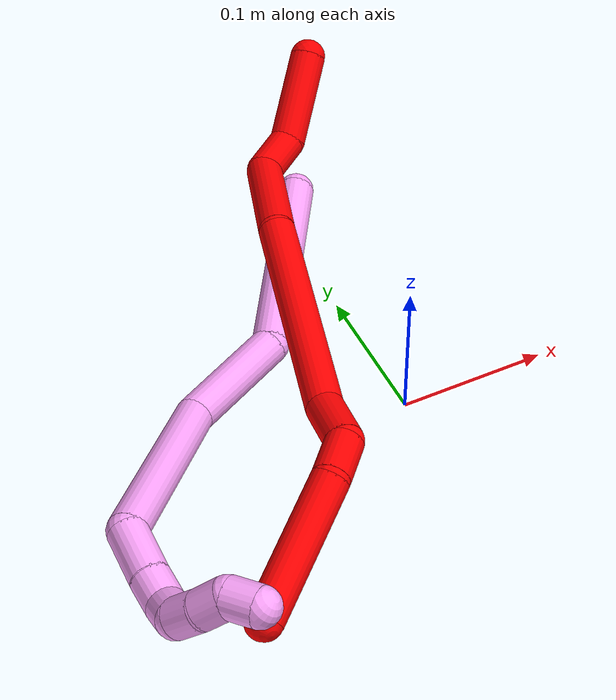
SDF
<sdf version="1.7">
 <world name="default">
  <model name="2">
   <static>0</static>
   <link name="2">
    <collision name="collision-cylinder-e_1_1_4">
     <pose>-0.01244 -0.022572 -0.020342 2.30427 -0.388569 -0.832701</pose>
     <geometry><cylinder><radius>0.0125</radius><length>0.065668</length></cylinder></geometry>
     <surface>
      <friction><ode><mu>1.16</mu><mu2>1.16</mu2><slip1>0</slip1><slip2>0</slip2></ode></friction>
      <contact><ode><kp>1e+06</kp><kd>1</kd><max_vel>0</max_vel><min_depth>0.001</min_depth></ode></contact>
     </surface>
    </collision>
    <visual name="visual-cylinder-e_1_1_4">
     <pose>-0.01244 -0.022572 -0.020342 2.30427 -0.388569 -0.832701</pose>
     <geometry><cylinder><radius>0.0125</radius><length>0.065668</length></cylinder></geometry>
     <material><ambient>1 0 0 1</ambient></material>
    </visual>
    <collision name="collision-cylinder-e_2_4_5">
     <pose>-0.023604 -0.058292 -0.049364 2.15429 0.080739 0.149849</pose>
     <geometry><cylinder><radius>0.0125</radius><length>0.031611</length></cylinder></geometry>
     <surface>
      <friction><ode><mu>1.16</mu><mu2>1.16</mu2><slip1>0</slip1><slip2>0</slip2></ode></friction>
      <contact><ode><kp>1e+06</kp><kd>1</kd><max_vel>0</max_vel><min_depth>0.001</min_depth></ode></contact>
     </surface>
    </collision>
    <visual name="visual-cylinder-e_2_4_5">
     <pose>-0.023604 -0.058292 -0.049364 2.15429 0.080739 0.149849</pose>
     <geometry><cylinder><radius>0.0125</radius><length>0.031611</length></cylinder></geometry>
     <material><ambient>1 0 0 1</ambient></material>
    </visual>
    <collision name="collision-cylinder-e_3_5_6">
     <pose>-0.013309 -0.080801 -0.096182 2.9009 0.22578 1.5063</pose>
     <geometry><cylinder><radius>0.0125</radius><length>0.080588</length></cylinder></geometry>
     <surface>
      <friction><ode><mu>1.16</mu><mu2>1.16</mu2><slip1>0</slip1><slip2>0</slip2></ode></friction>
      <contact><ode><kp>1e+06</kp><kd>1</kd><max_vel>0</max_vel><min_depth>0.001</min_depth></ode></contact>
     </surface>
    </collision>
    <visual name="visual-cylinder-e_3_5_6">
     <pose>-0.013309 -0.080801 -0.096182 2.9009 0.22578 1.5063</pose>
     <geometry><cylinder><radius>0.0125</radius><length>0.080588</length></cylinder></geometry>
     <material><ambient>1 0 0 1</ambient></material>
    </visual>
    <collision name="collision-cylinder-e_4_6_7">
     <pose>-0.007581 -0.109044 -0.209642 2.89597 -0.042378 -0.340059</pose>
     <geometry><cylinder><radius>0.0125</radius><length>0.155442</length></cylinder></geometry>
     <surface>
      <friction><ode><mu>1.16</mu><mu2>1.16</mu2><slip1>0</slip1><slip2>0</slip2></ode></friction>
      <contact><ode><kp>1e+06</kp><kd>1</kd><max_vel>0</max_vel><min_depth>0.001</min_depth></ode></contact>
     </surface>
    </collision>
    <visual name="visual-cylinder-e_4_6_7">
     <pose>-0.007581 -0.109044 -0.209642 2.89597 -0.042378 -0.340059</pose>
     <geometry><cylinder><radius>0.0125</radius><length>0.155442</length></cylinder></geometry>
     <material><ambient>1 0 0 1</ambient></material>
    </visual>
    <collision name="collision-cylinder-e_5_7_8">
     <pose>-0.005957 -0.12882 -0.304699 3.09632 0.24392 2.7763</pose>
     <geometry><cylinder><radius>0.0125</radius><length>0.040719</length></cylinder></geometry>
     <surface>
      <friction><ode><mu>1.16</mu><mu2>1.16</mu2><slip1>0</slip1><slip2>0</slip2></ode></friction>
      <contact><ode><kp>1e+06</kp><kd>1</kd><max_vel>0</max_vel><min_depth>0.001</min_depth></ode></contact>
     </surface>
    </collision>
    <visual name="visual-cylinder-e_5_7_8">
     <pose>-0.005957 -0.12882 -0.304699 3.09632 0.24392 2.7763</pose>
     <geometry><cylinder><radius>0.0125</radius><length>0.040719</length></cylinder></geometry>
     <material><ambient>1 0 0 1</ambient></material>
    </visual>
    <collision name="collision-cylinder-e_6_8_9">
     <pose>0.001335 -0.139382 -0.335799 2.43664 0.157875 0.423639</pose>
     <geometry><cylinder><radius>0.0125</radius><length>0.030216</length></cylinder></geometry>
     <surface>
      <friction><ode><mu>1.16</mu><mu2>1.16</mu2><slip1>0</slip1><slip2>0</slip2></ode></friction>
      <contact><ode><kp>1e+06</kp><kd>1</kd><max_vel>0</max_vel><min_depth>0.001</min_depth></ode></contact>
     </surface>
    </collision>
    <visual name="visual-cylinder-e_6_8_9">
     <pose>0.001335 -0.139382 -0.335799 2.43664 0.157875 0.423639</pose>
     <geometry><cylinder><radius>0.0125</radius><length>0.030216</length></cylinder></geometry>
     <material><ambient>1 0 0 1</ambient></material>
    </visual>
    <collision name="collision-cylinder-e_7_9_2">
     <pose>-0.00141 -0.187234 -0.375591 2.21076 -0.107151 -0.212755</pose>
     <geometry><cylinder><radius>0.0125</radius><length>0.095757</length></cylinder></geometry>
     <surface>
      <friction><ode><mu>1.16</mu><mu2>1.16</mu2><slip1>0</slip1><slip2>0</slip2></ode></friction>
      <contact><ode><kp>1e+06</kp><kd>1</kd><max_vel>0</max_vel><min_depth>0.001</min_depth></ode></contact>
     </surface>
    </collision>
    <visual name="visual-cylinder-e_7_9_2">
     <pose>-0.00141 -0.187234 -0.375591 2.21076 -0.107151 -0.212755</pose>
     <geometry><cylinder><radius>0.0125</radius><length>0.095757</length></cylinder></geometry>
     <material><ambient>1 0 0 1</ambient></material>
    </visual>
    <collision name="collision-sphere-2">
     <pose>-0.00653 -0.225418 -0.404018 0 -0 0</pose>
     <geometry><sphere><radius>0.0125</radius></sphere></geometry>
     <surface>
      <friction><ode><mu>1.16</mu><mu2>1.16</mu2><slip1>0</slip1><slip2>0</slip2></ode></friction>
      <contact><ode><kp>1e+06</kp><kd>1</kd><max_vel>0</max_vel><min_depth>0.001</min_depth></ode></contact>
     </surface>
    </collision>
    <visual name="visual-sphere-2">
     <pose>-0.00653 -0.225418 -0.404018 0 -0 0</pose>
     <geometry><sphere><radius>0.0125</radius></sphere></geometry>
     <material><ambient>1 0 0 1</ambient></material>
    </visual>
    <collision name="collision-sphere-9">
     <pose>0.00371 -0.14905 -0.347163 0 -0 0</pose>
     <geometry><sphere><radius>0.0125</radius></sphere></geometry>
     <surface>
      <friction><ode><mu>1.16</mu><mu2>1.16</mu2><slip1>0</slip1><slip2>0</slip2></ode></friction>
      <contact><ode><kp>1e+06</kp><kd>1</kd><max_vel>0</max_vel><min_depth>0.001</min_depth></ode></contact>
     </surface>
    </collision>
    <visual name="visual-sphere-9">
     <pose>0.00371 -0.14905 -0.347163 0 -0 0</pose>
     <geometry><sphere><radius>0.0125</radius></sphere></geometry>
     <material><ambient>1 0 0 1</ambient></material>
    </visual>
    <collision name="collision-sphere-4">
     <pose>-0.024879 -0.045145 -0.040684 0 -0 0</pose>
     <geometry><sphere><radius>0.0125</radius></sphere></geometry>
     <surface>
      <friction><ode><mu>1.16</mu><mu2>1.16</mu2><slip1>0</slip1><slip2>0</slip2></ode></friction>
      <contact><ode><kp>1e+06</kp><kd>1</kd><max_vel>0</max_vel><min_depth>0.001</min_depth></ode></contact>
     </surface>
    </collision>
    <visual name="visual-sphere-4">
     <pose>-0.024879 -0.045145 -0.040684 0 -0 0</pose>
     <geometry><sphere><radius>0.0125</radius></sphere></geometry>
     <material><ambient>1 0 0 1</ambient></material>
    </visual>
    <collision name="collision-sphere-1">
     <geometry><sphere><radius>0.0125</radius></sphere></geometry>
     <surface>
      <friction><ode><mu>1.16</mu><mu2>1.16</mu2><slip1>0</slip1><slip2>0</slip2></ode></friction>
      <contact><ode><kp>1e+06</kp><kd>1</kd><max_vel>0</max_vel><min_depth>0.001</min_depth></ode></contact>
     </surface>
    </collision>
    <visual name="visual-sphere-1">
     <geometry><sphere><radius>0.0125</radius></sphere></geometry>
     <material><ambient>1 0 0 1</ambient></material>
    </visual>
    <collision name="collision-sphere-8">
     <pose>-0.00104 -0.129714 -0.324436 0 -0 0</pose>
     <geometry><sphere><radius>0.0125</radius></sphere></geometry>
     <surface>
      <friction><ode><mu>1.16</mu><mu2>1.16</mu2><slip1>0</slip1><slip2>0</slip2></ode></friction>
      <contact><ode><kp>1e+06</kp><kd>1</kd><max_vel>0</max_vel><min_depth>0.001</min_depth></ode></contact>
     </surface>
    </collision>
    <visual name="visual-sphere-8">
     <pose>-0.00104 -0.129714 -0.324436 0 -0 0</pose>
     <geometry><sphere><radius>0.0125</radius></sphere></geometry>
     <material><ambient>1 0 0 1</ambient></material>
    </visual>
    <collision name="collision-sphere-5">
     <pose>-0.02233 -0.07144 -0.058043 0 -0 0</pose>
     <geometry><sphere><radius>0.0125</radius></sphere></geometry>
     <surface>
      <friction><ode><mu>1.16</mu><mu2>1.16</mu2><slip1>0</slip1><slip2>0</slip2></ode></friction>
      <contact><ode><kp>1e+06</kp><kd>1</kd><max_vel>0</max_vel><min_depth>0.001</min_depth></ode></contact>
     </surface>
    </collision>
    <visual name="visual-sphere-5">
     <pose>-0.02233 -0.07144 -0.058043 0 -0 0</pose>
     <geometry><sphere><radius>0.0125</radius></sphere></geometry>
     <material><ambient>1 0 0 1</ambient></material>
    </visual>
    <collision name="collision-sphere-6">
     <pose>-0.004289 -0.090162 -0.134322 0 -0 0</pose>
     <geometry><sphere><radius>0.0125</radius></sphere></geometry>
     <surface>
      <friction><ode><mu>1.16</mu><mu2>1.16</mu2><slip1>0</slip1><slip2>0</slip2></ode></friction>
      <contact><ode><kp>1e+06</kp><kd>1</kd><max_vel>0</max_vel><min_depth>0.001</min_depth></ode></contact>
     </surface>
    </collision>
    <visual name="visual-sphere-6">
     <pose>-0.004289 -0.090162 -0.134322 0 -0 0</pose>
     <geometry><sphere><radius>0.0125</radius></sphere></geometry>
     <material><ambient>1 0 0 1</ambient></material>
    </visual>
    <collision name="collision-sphere-7">
     <pose>-0.010874 -0.127926 -0.284963 0 -0 0</pose>
     <geometry><sphere><radius>0.0125</radius></sphere></geometry>
     <surface>
      <friction><ode><mu>1.16</mu><mu2>1.16</mu2><slip1>0</slip1><slip2>0</slip2></ode></friction>
      <contact><ode><kp>1e+06</kp><kd>1</kd><max_vel>0</max_vel><min_depth>0.001</min_depth></ode></contact>
     </surface>
    </collision>
    <visual name="visual-sphere-7">
     <pose>-0.010874 -0.127926 -0.284963 0 -0 0</pose>
     <geometry><sphere><radius>0.0125</radius></sphere></geometry>
     <material><ambient>1 0 0 1</ambient></material>
    </visual>
    <inertial>
     <pose>-0.008303 -0.108345 -0.203507 0 -0 0</pose>
     <mass>0.5</mass>
     <inertia>
      <ixx>0.000304</ixx>
      <ixy>0</ixy>
      <ixz>0</ixz>
      <iyy>-0.000447</iyy>
      <iyz>0</iyz>
      <izz>0.00016</izz>
     </inertia>
    </inertial>
   </link>
   <pose>0.066034 0.281114 0.063148 1.75191 -1.26348 2.94481</pose>
  </model>
  <model name="4">
   <static>0</static>
   <link name="4">
    <collision name="collision-cylinder-e_1_1_4">
     <pose>-0.048879 -0.060165 -0.005111 1.65554 -0.680503 -0.735655</pose>
     <geometry><cylinder><radius>0.0125</radius><length>0.155373</length></cylinder></geometry>
     <surface>
      <friction><ode><mu>1.16</mu><mu2>1.16</mu2><slip1>0</slip1><slip2>0</slip2></ode></friction>
      <contact><ode><kp>1e+06</kp><kd>1</kd><max_vel>0</max_vel><min_depth>0.001</min_depth></ode></contact>
     </surface>
    </collision>
    <visual name="visual-cylinder-e_1_1_4">
     <pose>-0.048879 -0.060165 -0.005111 1.65554 -0.680503 -0.735655</pose>
     <geometry><cylinder><radius>0.0125</radius><length>0.155373</length></cylinder></geometry>
     <material><ambient>1 0.65098 0.996078 1</ambient></material>
    </visual>
    <collision name="collision-cylinder-e_2_4_5">
     <pose>-0.127673 -0.134812 -0.027536 2.44508 -0.924397 -1.88207</pose>
     <geometry><cylinder><radius>0.0125</radius><length>0.074952</length></cylinder></geometry>
     <surface>
      <friction><ode><mu>1.16</mu><mu2>1.16</mu2><slip1>0</slip1><slip2>0</slip2></ode></friction>
      <contact><ode><kp>1e+06</kp><kd>1</kd><max_vel>0</max_vel><min_depth>0.001</min_depth></ode></contact>
     </surface>
    </collision>
    <visual name="visual-cylinder-e_2_4_5">
     <pose>-0.127673 -0.134812 -0.027536 2.44508 -0.924397 -1.88207</pose>
     <geometry><cylinder><radius>0.0125</radius><length>0.074952</length></cylinder></geometry>
     <material><ambient>1 0.65098 0.996078 1</ambient></material>
    </visual>
    <collision name="collision-cylinder-e_3_5_6">
     <pose>-0.212243 -0.186493 -0.041721 1.48684 -0.97155 -0.90381</pose>
     <geometry><cylinder><radius>0.0125</radius><length>0.132373</length></cylinder></geometry>
     <surface>
      <friction><ode><mu>1.16</mu><mu2>1.16</mu2><slip1>0</slip1><slip2>0</slip2></ode></friction>
      <contact><ode><kp>1e+06</kp><kd>1</kd><max_vel>0</max_vel><min_depth>0.001</min_depth></ode></contact>
     </surface>
    </collision>
    <visual name="visual-cylinder-e_3_5_6">
     <pose>-0.212243 -0.186493 -0.041721 1.48684 -0.97155 -0.90381</pose>
     <geometry><cylinder><radius>0.0125</radius><length>0.132373</length></cylinder></geometry>
     <material><ambient>1 0.65098 0.996078 1</ambient></material>
    </visual>
    <collision name="collision-cylinder-e_4_6_7">
     <pose>-0.270719 -0.240574 -0.03458 1.33757 -0.216778 -0.171567</pose>
     <geometry><cylinder><radius>0.0125</radius><length>0.035536</length></cylinder></geometry>
     <surface>
      <friction><ode><mu>1.16</mu><mu2>1.16</mu2><slip1>0</slip1><slip2>0</slip2></ode></friction>
      <contact><ode><kp>1e+06</kp><kd>1</kd><max_vel>0</max_vel><min_depth>0.001</min_depth></ode></contact>
     </surface>
    </collision>
    <visual name="visual-cylinder-e_4_6_7">
     <pose>-0.270719 -0.240574 -0.03458 1.33757 -0.216778 -0.171567</pose>
     <geometry><cylinder><radius>0.0125</radius><length>0.035536</length></cylinder></geometry>
     <material><ambient>1 0.65098 0.996078 1</ambient></material>
    </visual>
    <collision name="collision-cylinder-e_5_7_8">
     <pose>-0.27598 -0.267486 -0.028093 1.3288 -0.138508 -0.108543</pose>
     <geometry><cylinder><radius>0.0125</radius><length>0.020861</length></cylinder></geometry>
     <surface>
      <friction><ode><mu>1.16</mu><mu2>1.16</mu2><slip1>0</slip1><slip2>0</slip2></ode></friction>
      <contact><ode><kp>1e+06</kp><kd>1</kd><max_vel>0</max_vel><min_depth>0.001</min_depth></ode></contact>
     </surface>
    </collision>
    <visual name="visual-cylinder-e_5_7_8">
     <pose>-0.27598 -0.267486 -0.028093 1.3288 -0.138508 -0.108543</pose>
     <geometry><cylinder><radius>0.0125</radius><length>0.020861</length></cylinder></geometry>
     <material><ambient>1 0.65098 0.996078 1</ambient></material>
    </visual>
    <collision name="collision-cylinder-e_6_8_9">
     <pose>-0.282626 -0.283927 -0.019489 0.807935 -0.530691 -0.2313</pose>
     <geometry><cylinder><radius>0.0125</radius><length>0.02057</length></cylinder></geometry>
     <surface>
      <friction><ode><mu>1.16</mu><mu2>1.16</mu2><slip1>0</slip1><slip2>0</slip2></ode></friction>
      <contact><ode><kp>1e+06</kp><kd>1</kd><max_vel>0</max_vel><min_depth>0.001</min_depth></ode></contact>
     </surface>
    </collision>
    <visual name="visual-cylinder-e_6_8_9">
     <pose>-0.282626 -0.283927 -0.019489 0.807935 -0.530691 -0.2313</pose>
     <geometry><cylinder><radius>0.0125</radius><length>0.02057</length></cylinder></geometry>
     <material><ambient>1 0.65098 0.996078 1</ambient></material>
    </visual>
    <collision name="collision-cylinder-e_7_9_10">
     <pose>-0.288151 -0.292734 -0.003563 0.239758 -0.031671 -0.003815</pose>
     <geometry><cylinder><radius>0.0125</radius><length>0.020179</length></cylinder></geometry>
     <surface>
      <friction><ode><mu>1.16</mu><mu2>1.16</mu2><slip1>0</slip1><slip2>0</slip2></ode></friction>
      <contact><ode><kp>1e+06</kp><kd>1</kd><max_vel>0</max_vel><min_depth>0.001</min_depth></ode></contact>
     </surface>
    </collision>
    <visual name="visual-cylinder-e_7_9_10">
     <pose>-0.288151 -0.292734 -0.003563 0.239758 -0.031671 -0.003815</pose>
     <geometry><cylinder><radius>0.0125</radius><length>0.020179</length></cylinder></geometry>
     <material><ambient>1 0.65098 0.996078 1</ambient></material>
    </visual>
    <collision name="collision-cylinder-e_8_10_11">
     <pose>-0.287476 -0.296433 0.016108 0.131386 0.099515 0.006552</pose>
     <geometry><cylinder><radius>0.0125</radius><length>0.02002</length></cylinder></geometry>
     <surface>
      <friction><ode><mu>1.16</mu><mu2>1.16</mu2><slip1>0</slip1><slip2>0</slip2></ode></friction>
      <contact><ode><kp>1e+06</kp><kd>1</kd><max_vel>0</max_vel><min_depth>0.001</min_depth></ode></contact>
     </surface>
    </collision>
    <visual name="visual-cylinder-e_8_10_11">
     <pose>-0.287476 -0.296433 0.016108 0.131386 0.099515 0.006552</pose>
     <geometry><cylinder><radius>0.0125</radius><length>0.02002</length></cylinder></geometry>
     <material><ambient>1 0.65098 0.996078 1</ambient></material>
    </visual>
    <collision name="collision-cylinder-e_9_11_2">
     <pose>-0.284154 -0.304719 0.032855 0.793233 0.233242 0.098051</pose>
     <geometry><cylinder><radius>0.0125</radius><length>0.020137</length></cylinder></geometry>
     <surface>
      <friction><ode><mu>1.16</mu><mu2>1.16</mu2><slip1>0</slip1><slip2>0</slip2></ode></friction>
      <contact><ode><kp>1e+06</kp><kd>1</kd><max_vel>0</max_vel><min_depth>0.001</min_depth></ode></contact>
     </surface>
    </collision>
    <visual name="visual-cylinder-e_9_11_2">
     <pose>-0.284154 -0.304719 0.032855 0.793233 0.233242 0.098051</pose>
     <geometry><cylinder><radius>0.0125</radius><length>0.020137</length></cylinder></geometry>
     <material><ambient>1 0.65098 0.996078 1</ambient></material>
    </visual>
    <collision name="collision-sphere-2">
     <pose>-0.281827 -0.3117 0.039727 0 -0 0</pose>
     <geometry><sphere><radius>0.0125</radius></sphere></geometry>
     <surface>
      <friction><ode><mu>1.16</mu><mu2>1.16</mu2><slip1>0</slip1><slip2>0</slip2></ode></friction>
      <contact><ode><kp>1e+06</kp><kd>1</kd><max_vel>0</max_vel><min_depth>0.001</min_depth></ode></contact>
     </surface>
    </collision>
    <visual name="visual-sphere-2">
     <pose>-0.281827 -0.3117 0.039727 0 -0 0</pose>
     <geometry><sphere><radius>0.0125</radius></sphere></geometry>
     <material><ambient>1 0.65098 0.996078 1</ambient></material>
    </visual>
    <collision name="collision-sphere-11">
     <pose>-0.286481 -0.297738 0.025982 0 -0 0</pose>
     <geometry><sphere><radius>0.0125</radius></sphere></geometry>
     <surface>
      <friction><ode><mu>1.16</mu><mu2>1.16</mu2><slip1>0</slip1><slip2>0</slip2></ode></friction>
      <contact><ode><kp>1e+06</kp><kd>1</kd><max_vel>0</max_vel><min_depth>0.001</min_depth></ode></contact>
     </surface>
    </collision>
    <visual name="visual-sphere-11">
     <pose>-0.286481 -0.297738 0.025982 0 -0 0</pose>
     <geometry><sphere><radius>0.0125</radius></sphere></geometry>
     <material><ambient>1 0.65098 0.996078 1</ambient></material>
    </visual>
    <collision name="collision-sphere-10">
     <pose>-0.28847 -0.295128 0.006233 0 -0 0</pose>
     <geometry><sphere><radius>0.0125</radius></sphere></geometry>
     <surface>
      <friction><ode><mu>1.16</mu><mu2>1.16</mu2><slip1>0</slip1><slip2>0</slip2></ode></friction>
      <contact><ode><kp>1e+06</kp><kd>1</kd><max_vel>0</max_vel><min_depth>0.001</min_depth></ode></contact>
     </surface>
    </collision>
    <visual name="visual-sphere-10">
     <pose>-0.28847 -0.295128 0.006233 0 -0 0</pose>
     <geometry><sphere><radius>0.0125</radius></sphere></geometry>
     <material><ambient>1 0.65098 0.996078 1</ambient></material>
    </visual>
    <collision name="collision-sphere-9">
     <pose>-0.287831 -0.290339 -0.013359 0 -0 0</pose>
     <geometry><sphere><radius>0.0125</radius></sphere></geometry>
     <surface>
      <friction><ode><mu>1.16</mu><mu2>1.16</mu2><slip1>0</slip1><slip2>0</slip2></ode></friction>
      <contact><ode><kp>1e+06</kp><kd>1</kd><max_vel>0</max_vel><min_depth>0.001</min_depth></ode></contact>
     </surface>
    </collision>
    <visual name="visual-sphere-9">
     <pose>-0.287831 -0.290339 -0.013359 0 -0 0</pose>
     <geometry><sphere><radius>0.0125</radius></sphere></geometry>
     <material><ambient>1 0.65098 0.996078 1</ambient></material>
    </visual>
    <collision name="collision-sphere-4">
     <pose>-0.097758 -0.120331 -0.010221 0 -0 0</pose>
     <geometry><sphere><radius>0.0125</radius></sphere></geometry>
     <surface>
      <friction><ode><mu>1.16</mu><mu2>1.16</mu2><slip1>0</slip1><slip2>0</slip2></ode></friction>
      <contact><ode><kp>1e+06</kp><kd>1</kd><max_vel>0</max_vel><min_depth>0.001</min_depth></ode></contact>
     </surface>
    </collision>
    <visual name="visual-sphere-4">
     <pose>-0.097758 -0.120331 -0.010221 0 -0 0</pose>
     <geometry><sphere><radius>0.0125</radius></sphere></geometry>
     <material><ambient>1 0.65098 0.996078 1</ambient></material>
    </visual>
    <collision name="collision-sphere-1">
     <geometry><sphere><radius>0.0125</radius></sphere></geometry>
     <surface>
      <friction><ode><mu>1.16</mu><mu2>1.16</mu2><slip1>0</slip1><slip2>0</slip2></ode></friction>
      <contact><ode><kp>1e+06</kp><kd>1</kd><max_vel>0</max_vel><min_depth>0.001</min_depth></ode></contact>
     </surface>
    </collision>
    <visual name="visual-sphere-1">
     <geometry><sphere><radius>0.0125</radius></sphere></geometry>
     <material><ambient>1 0.65098 0.996078 1</ambient></material>
    </visual>
    <collision name="collision-sphere-8">
     <pose>-0.27742 -0.277515 -0.025618 0 -0 0</pose>
     <geometry><sphere><radius>0.0125</radius></sphere></geometry>
     <surface>
      <friction><ode><mu>1.16</mu><mu2>1.16</mu2><slip1>0</slip1><slip2>0</slip2></ode></friction>
      <contact><ode><kp>1e+06</kp><kd>1</kd><max_vel>0</max_vel><min_depth>0.001</min_depth></ode></contact>
     </surface>
    </collision>
    <visual name="visual-sphere-8">
     <pose>-0.27742 -0.277515 -0.025618 0 -0 0</pose>
     <geometry><sphere><radius>0.0125</radius></sphere></geometry>
     <material><ambient>1 0.65098 0.996078 1</ambient></material>
    </visual>
    <collision name="collision-sphere-5">
     <pose>-0.157589 -0.149294 -0.044851 0 -0 0</pose>
     <geometry><sphere><radius>0.0125</radius></sphere></geometry>
     <surface>
      <friction><ode><mu>1.16</mu><mu2>1.16</mu2><slip1>0</slip1><slip2>0</slip2></ode></friction>
      <contact><ode><kp>1e+06</kp><kd>1</kd><max_vel>0</max_vel><min_depth>0.001</min_depth></ode></contact>
     </surface>
    </collision>
    <visual name="visual-sphere-5">
     <pose>-0.157589 -0.149294 -0.044851 0 -0 0</pose>
     <geometry><sphere><radius>0.0125</radius></sphere></geometry>
     <material><ambient>1 0.65098 0.996078 1</ambient></material>
    </visual>
    <collision name="collision-sphere-6">
     <pose>-0.266897 -0.223692 -0.03859 0 -0 0</pose>
     <geometry><sphere><radius>0.0125</radius></sphere></geometry>
     <surface>
      <friction><ode><mu>1.16</mu><mu2>1.16</mu2><slip1>0</slip1><slip2>0</slip2></ode></friction>
      <contact><ode><kp>1e+06</kp><kd>1</kd><max_vel>0</max_vel><min_depth>0.001</min_depth></ode></contact>
     </surface>
    </collision>
    <visual name="visual-sphere-6">
     <pose>-0.266897 -0.223692 -0.03859 0 -0 0</pose>
     <geometry><sphere><radius>0.0125</radius></sphere></geometry>
     <material><ambient>1 0.65098 0.996078 1</ambient></material>
    </visual>
    <collision name="collision-sphere-7">
     <pose>-0.27454 -0.257456 -0.030569 0 -0 0</pose>
     <geometry><sphere><radius>0.0125</radius></sphere></geometry>
     <surface>
      <friction><ode><mu>1.16</mu><mu2>1.16</mu2><slip1>0</slip1><slip2>0</slip2></ode></friction>
      <contact><ode><kp>1e+06</kp><kd>1</kd><max_vel>0</max_vel><min_depth>0.001</min_depth></ode></contact>
     </surface>
    </collision>
    <visual name="visual-sphere-7">
     <pose>-0.27454 -0.257456 -0.030569 0 -0 0</pose>
     <geometry><sphere><radius>0.0125</radius></sphere></geometry>
     <material><ambient>1 0.65098 0.996078 1</ambient></material>
    </visual>
    <inertial>
     <pose>-0.167484 -0.164172 -0.019368 0 -0 0</pose>
     <mass>0.5</mass>
     <inertia>
      <ixx>-4.1e-05</ixx>
      <ixy>0</ixy>
      <ixz>0</ixz>
      <iyy>-1.5e-05</iyy>
      <iyz>0</iyz>
      <izz>0.000781</izz>
     </inertia>
    </inertial>
   </link>
   <pose>0.019914 0.205654 0.011478 0.43124 0.579609 0.273857</pose>
  </model>
 </world>
</sdf>
